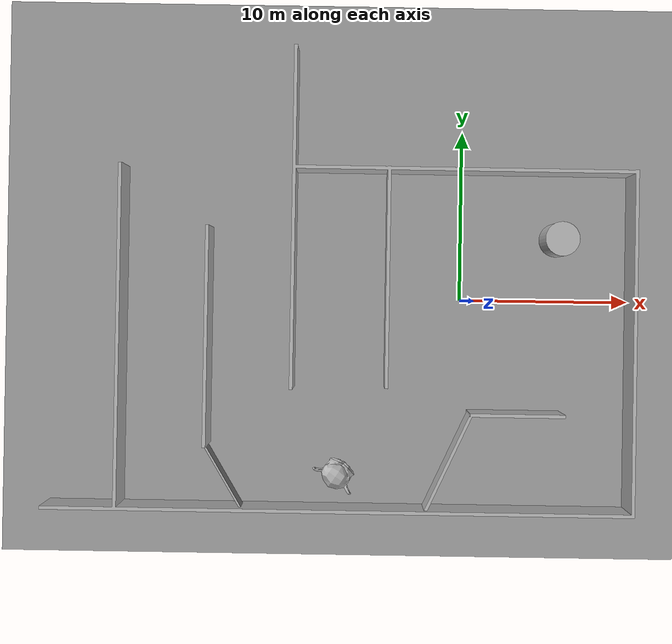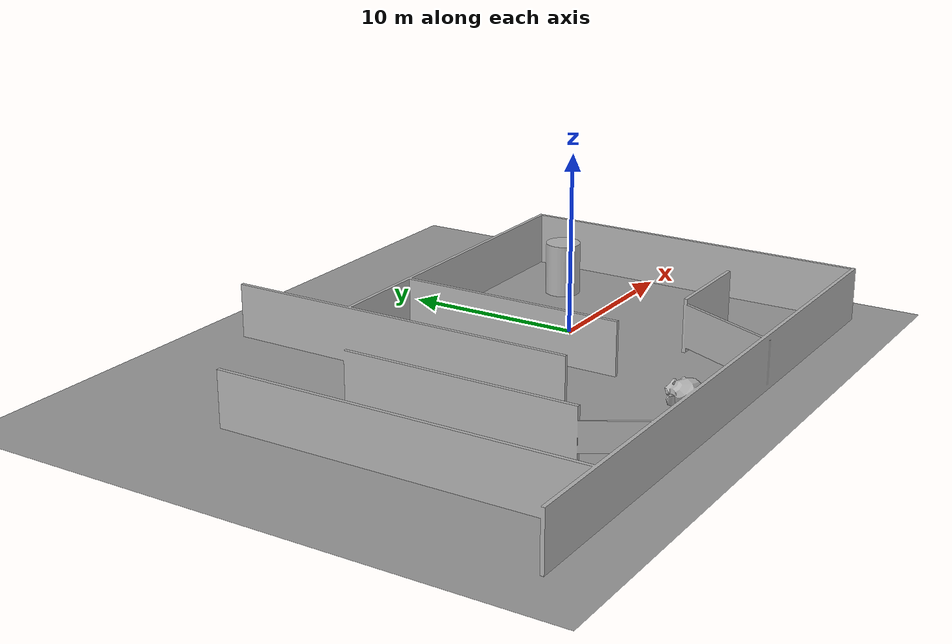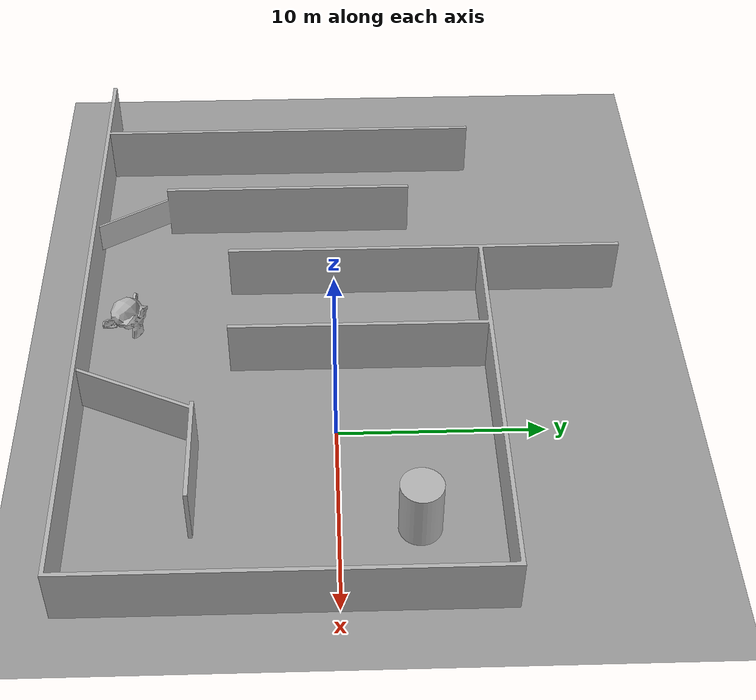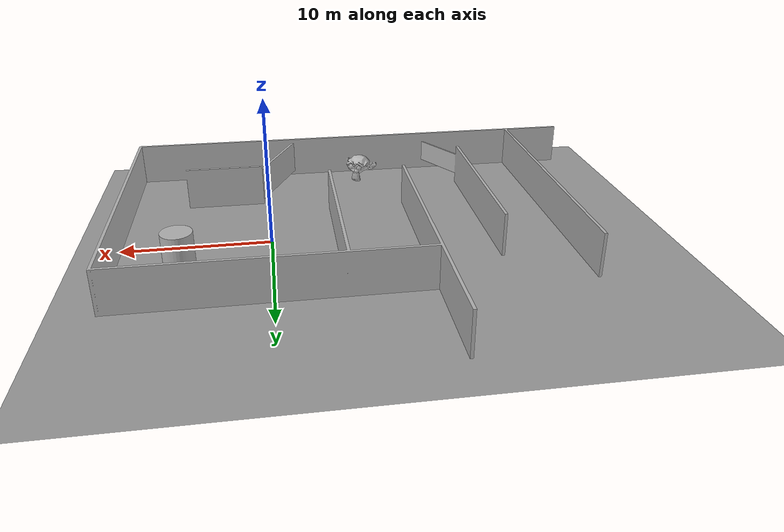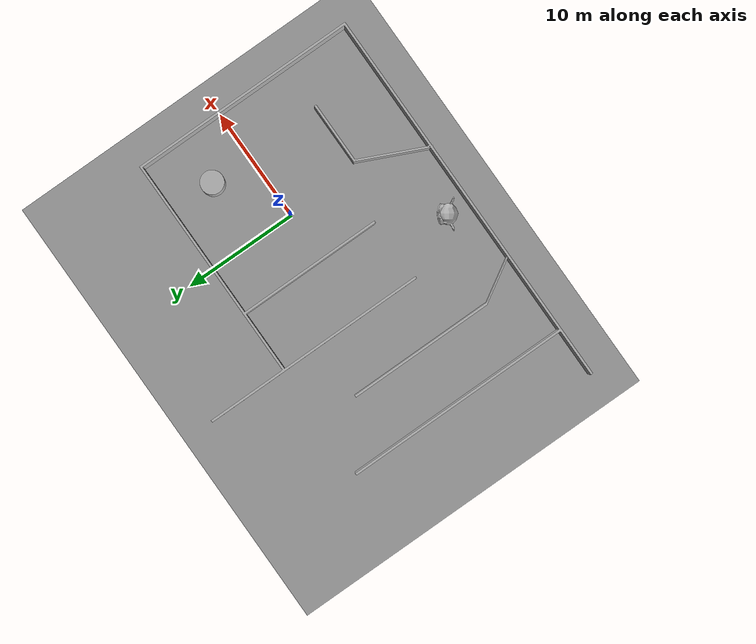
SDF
<?xml version="1.0"?>
<sdf version="1.7">
  <world name="empty">
    <physics name='1ms' type='ignored'>
      <max_step_size>0.001</max_step_size>
      <real_time_factor>1</real_time_factor>
      <real_time_update_rate>1000</real_time_update_rate>
    </physics>
    <plugin name='gz::sim::systems::Physics' filename='gz-sim-physics-system'/>
    <plugin name='gz::sim::systems::UserCommands' filename='gz-sim-user-commands-system'/>
    <plugin name='gz::sim::systems::SceneBroadcaster' filename='gz-sim-scene-broadcaster-system'/>
    <plugin name='gz::sim::systems::Contact' filename='gz-sim-contact-system'/>
    <gravity>0 0 -9.8000000000000007</gravity>
    <magnetic_field>5.5644999999999998e-06 2.2875799999999999e-05 -4.2388400000000002e-05</magnetic_field>
    <atmosphere type='adiabatic'/>

    <scene>
      <ambient>1 1 1 1</ambient>
      <background>0.3 0.7 0.9 1</background>
      <shadows>0</shadows>
      <grid>false</grid>
    </scene>

    <light type="directional" name="sun">
      <cast_shadows>0</cast_shadows>
      <pose>-5 -3 10 0 0 0</pose>
      <diffuse>1 1 1 1</diffuse>
      <specular>1 1 1 1</specular>
      <direction>0 0 -1</direction>
    </light>

    <model name='ground_plane'>
      <static>true</static>
      <link name='link'>
        <collision name='collision'>
          <geometry>
            <plane>
              <normal>0.0 0.0 1</normal>
              <size>100 100</size>
            </plane>
          </geometry>
        </collision>
        <visual name='visual'>
          <geometry>
            <plane>
              <normal>0.0 0.0 1</normal>
              <size>100 100</size>
            </plane>
          </geometry>
          <material>
            <ambient>0.6 0.6 0.6 1</ambient>
            <diffuse>0.6 0.6 0.6 1</diffuse>
          </material>
        </visual>
      </link>
      <pose>0 0 0 0 0 0</pose>
    </model>

  <model name='maze'>
    <static>true</static>
    <link name='link'>
      <visual name='visual_m'>
        <geometry>
          <mesh>
            <uri>file:///home/ns/ros2_ws/src/slam/worlds/Maze.stl</uri>
            <scale>1 1 1</scale>
          </mesh>
        </geometry>
        <material>
          <ambient>0.6 0.6 0.6 1</ambient>
          <diffuse>0.7 0.7 0.7 1</diffuse>
        </material>
      </visual>
      <collision name='collision_m'>
        <geometry>
          <mesh>
            <uri>file:///home/ns/ros2_ws/src/slam/worlds/Maze.stl</uri>
            <scale>1 1 1</scale>
          </mesh>
        </geometry>
      </collision>
    </link>
    <pose>0 0 0 0 0 0</pose>
  </model>

    </world>
</sdf>
